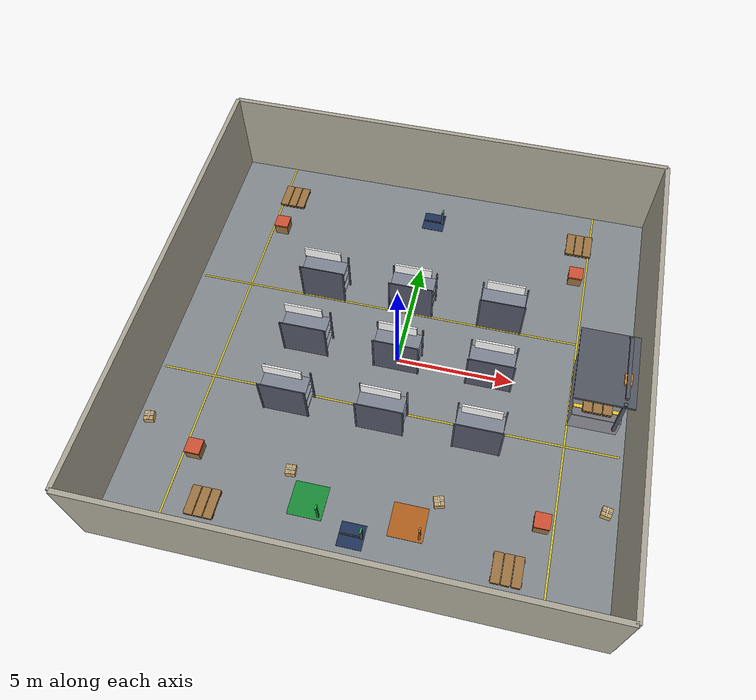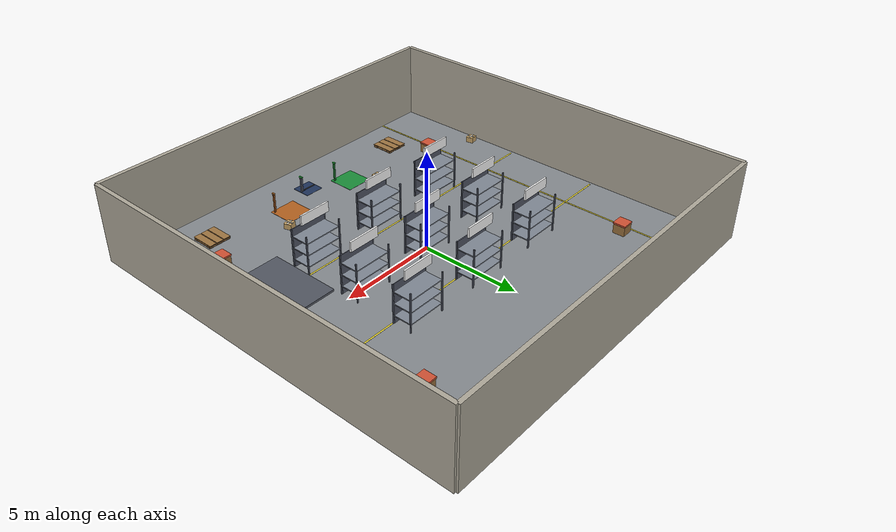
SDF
<?xml version="1.0" ?>
<sdf version="1.6">
  <world name="warehouse_world">

    <!-- ===== Physics (dartsim engine — must be a valid gz-physics engine) ===== -->
    <physics name="warehouse_physics" type="dartsim">
      <max_step_size>0.001</max_step_size>
      <real_time_factor>1.0</real_time_factor>
    </physics>

    <!-- ===== Required System Plugins ===== -->
    <plugin
      filename="gz-sim-physics-system"
      name="gz::sim::systems::Physics">
    </plugin>
    <plugin
      filename="gz-sim-user-commands-system"
      name="gz::sim::systems::UserCommands">
    </plugin>
    <plugin
      filename="gz-sim-scene-broadcaster-system"
      name="gz::sim::systems::SceneBroadcaster">
    </plugin>
    <plugin
      filename="gz-sim-contact-system"
      name="gz::sim::systems::Contact">
    </plugin>
    <plugin
      filename="gz-sim-sensors-system"
      name="gz::sim::systems::Sensors">
    </plugin>

    <!-- ===== Scene / ambient light ===== -->
    <scene>
      <ambient>0.42 0.42 0.46 1</ambient>
      <background>0.18 0.21 0.26 1</background>
      <shadows>true</shadows>
    </scene>

    <!-- ===== Lighting ===== -->
    <light type="directional" name="sun">
      <cast_shadows>true</cast_shadows>
      <pose>0 0 10 0 0 0</pose>
      <diffuse>0.85 0.85 0.82 1</diffuse>
      <specular>0.3 0.3 0.3 1</specular>
      <attenuation>
        <range>1000</range>
        <constant>0.9</constant>
        <linear>0.01</linear>
        <quadratic>0.001</quadratic>
      </attenuation>
      <direction>-0.5 0.15 -0.9</direction>
    </light>

    <!-- Fill light from the opposite side (kills harsh shadows) -->
    <light type="directional" name="fill_light">
      <cast_shadows>false</cast_shadows>
      <pose>0 0 8 0 0 0</pose>
      <diffuse>0.4 0.4 0.45 1</diffuse>
      <specular>0.1 0.1 0.1 1</specular>
      <direction>0.6 -0.2 -0.8</direction>
    </light>

    <!-- Overhead work light over the rack grid -->
    <light type="point" name="overhead_light">
      <cast_shadows>true</cast_shadows>
      <pose>0 0 10 0 0 0</pose>
      <diffuse>0.35 0.35 0.4 1</diffuse>
      <specular>0.15 0.15 0.15 1</specular>
      <attenuation>
        <range>60</range>
        <constant>0.3</constant>
        <linear>0.02</linear>
        <quadratic>0.002</quadratic>
      </attenuation>
    </light>

    <!-- ===== Ground ===== -->
    <model name="ground_plane">
      <static>true</static>
      <link name="link">
        <collision name="collision">
          <geometry>
            <plane>
              <normal>0 0 1</normal>
              <size>100 100</size>
            </plane>
          </geometry>
        </collision>
      </link>
    </model>

    <!-- ===== Warehouse Floor ===== -->
    <model name="warehouse_floor">
      <static>true</static>
      <pose>0 0 0 0 0 0</pose>
      <link name="link">
        <visual name="visual">
          <geometry><box><size>20 20 0.02</size></box></geometry>
          <material>
            <ambient>0.35 0.36 0.38 1</ambient>
            <diffuse>0.52 0.54 0.56 1</diffuse>
            <specular>0.12 0.12 0.12 1</specular>
          </material>
        </visual>
      </link>
    </model>

    <!-- Floor lane markings (visual guides for the aisles) -->
    <model name="floor_markings">
      <static>true</static>
      <link name="link">
        <visual name="stripe_a">
          <pose>0 2.5 0.012 0 0 0</pose>
          <geometry><box><size>19.5 0.08 0.004</size></box></geometry>
          <material>
            <ambient>0.6 0.55 0.1 1</ambient>
            <diffuse>0.85 0.78 0.18 1</diffuse>
          </material>
        </visual>
        <visual name="stripe_b">
          <pose>0 -2.5 0.012 0 0 0</pose>
          <geometry><box><size>19.5 0.08 0.004</size></box></geometry>
          <material>
            <ambient>0.6 0.55 0.1 1</ambient>
            <diffuse>0.85 0.78 0.18 1</diffuse>
          </material>
        </visual>
        <visual name="stripe_east">
          <pose>7.5 0 0.012 0 0 0</pose>
          <geometry><box><size>0.08 20 0.004</size></box></geometry>
          <material>
            <ambient>0.6 0.55 0.1 1</ambient>
            <diffuse>0.85 0.78 0.18 1</diffuse>
          </material>
        </visual>
        <visual name="stripe_west">
          <pose>-7.5 0 0.012 0 0 0</pose>
          <geometry><box><size>0.08 20 0.004</size></box></geometry>
          <material>
            <ambient>0.6 0.55 0.1 1</ambient>
            <diffuse>0.85 0.78 0.18 1</diffuse>
          </material>
        </visual>
        <visual name="stripe_dock">
          <pose>7.5 0 0.012 0 0 0</pose>
          <geometry><box><size>0.08 3.4 0.004</size></box></geometry>
          <material>
            <ambient>0.5 0.45 0.08 1</ambient>
            <diffuse>0.8 0.72 0.15 1</diffuse>
          </material>
        </visual>
      </link>
    </model>

    <!-- ===== Walls ===== -->
    <model name="north_wall">
      <static>true</static>
      <pose>0 10 2 0 0 0</pose>
      <link name="link">
        <collision name="collision">
          <geometry><box><size>20 0.2 4</size></box></geometry>
        </collision>
        <visual name="visual">
          <geometry><box><size>20 0.2 4</size></box></geometry>
          <material>
            <ambient>0.62 0.6 0.55 1</ambient>
            <diffuse>0.68 0.66 0.6 1</diffuse>
            <specular>0.05 0.05 0.05 1</specular>
          </material>
        </visual>
      </link>
    </model>

    <model name="south_wall">
      <static>true</static>
      <pose>0 -10 2 0 0 0</pose>
      <link name="link">
        <collision name="collision">
          <geometry><box><size>20 0.2 4</size></box></geometry>
        </collision>
        <visual name="visual">
          <geometry><box><size>20 0.2 4</size></box></geometry>
          <material>
            <ambient>0.62 0.6 0.55 1</ambient>
            <diffuse>0.68 0.66 0.6 1</diffuse>
            <specular>0.05 0.05 0.05 1</specular>
          </material>
        </visual>
      </link>
    </model>

    <model name="east_wall">
      <static>true</static>
      <pose>10 0 2 0 0 0</pose>
      <link name="link">
        <collision name="collision">
          <geometry><box><size>0.2 20 4</size></box></geometry>
        </collision>
        <visual name="visual">
          <geometry><box><size>0.2 20 4</size></box></geometry>
          <material>
            <ambient>0.62 0.6 0.55 1</ambient>
            <diffuse>0.68 0.66 0.6 1</diffuse>
            <specular>0.05 0.05 0.05 1</specular>
          </material>
        </visual>
      </link>
    </model>

    <model name="west_wall">
      <static>true</static>
      <pose>-10 0 2 0 0 0</pose>
      <link name="link">
        <collision name="collision">
          <geometry><box><size>0.2 20 4</size></box></geometry>
        </collision>
        <visual name="visual">
          <geometry><box><size>0.2 20 4</size></box></geometry>
          <material>
            <ambient>0.62 0.6 0.55 1</ambient>
            <diffuse>0.68 0.66 0.6 1</diffuse>
            <specular>0.05 0.05 0.05 1</specular>
          </material>
        </visual>
      </link>
    </model>

    <!-- ===== Racks (3 rows x 3 columns) with ID signs ===== -->
    <include><name>rack_a1</name><pose>-4 3 0 0 0 0</pose><uri>model://rack</uri></include>
    <include><name>rack_a2</name><pose> 0 3 0 0 0 0</pose><uri>model://rack</uri></include>
    <include><name>rack_a3</name><pose> 4 3 0 0 0 0</pose><uri>model://rack</uri></include>
    <include><name>rack_b1</name><pose>-4 0 0 0 0 0</pose><uri>model://rack</uri></include>
    <include><name>rack_b2</name><pose> 0 0 0 0 0 0</pose><uri>model://rack</uri></include>
    <include><name>rack_b3</name><pose> 4 0 0 0 0 0</pose><uri>model://rack</uri></include>
    <include><name>rack_c1</name><pose>-4 -3 0 0 0 0</pose><uri>model://rack</uri></include>
    <include><name>rack_c2</name><pose> 0 -3 0 0 0 0</pose><uri>model://rack</uri></include>
    <include><name>rack_c3</name><pose> 4 -3 0 0 0 0</pose><uri>model://rack</uri></include>

    <!-- Rack ID signs mounted above each rack -->
    <include><name>sign_a1</name><pose>-4 3 2.3 0 0 0</pose><uri>model://rack_sign_A1</uri></include>
    <include><name>sign_a2</name><pose> 0 3 2.3 0 0 0</pose><uri>model://rack_sign_A2</uri></include>
    <include><name>sign_a3</name><pose> 4 3 2.3 0 0 0</pose><uri>model://rack_sign_A3</uri></include>
    <include><name>sign_b1</name><pose>-4 0 2.3 0 0 0</pose><uri>model://rack_sign_B1</uri></include>
    <include><name>sign_b2</name><pose> 0 0 2.3 0 0 0</pose><uri>model://rack_sign_B2</uri></include>
    <include><name>sign_b3</name><pose> 4 0 2.3 0 0 0</pose><uri>model://rack_sign_B3</uri></include>
    <include><name>sign_c1</name><pose>-4 -3 2.3 0 0 0</pose><uri>model://rack_sign_C1</uri></include>
    <include><name>sign_c2</name><pose> 0 -3 2.3 0 0 0</pose><uri>model://rack_sign_C2</uri></include>
    <include><name>sign_c3</name><pose> 4 -3 2.3 0 0 0</pose><uri>model://rack_sign_C3</uri></include>

    <!-- ===== Loading dock (east wall) + pallets on the platform ===== -->
    <include><name>loading_dock</name><pose>8.5 0 0 0 0 0</pose><uri>model://loading_dock</uri></include>
    <include><name>dock_pallet_1</name><pose>8.5 -0.7 1.0 0 0 0</pose><uri>model://pallet</uri></include>
    <include><name>dock_pallet_2</name><pose>8.5 0.7 1.0 0 0 0</pose><uri>model://pallet</uri></include>
    <include><name>dock_crate</name><pose>8.5 0 1.0 0 0 0.4</pose><uri>model://crate</uri></include>

    <!-- ===== Pickup / dropoff stations (south zone) ===== -->
    <include><name>pickup_station</name><pose>-2 -7 0 0 0 0</pose><uri>model://pickup_station</uri></include>
    <include><name>dropoff_station</name><pose> 2 -7 0 0 0 0</pose><uri>model://dropoff_station</uri></include>

    <!-- ===== Charging stations (robot1 north, robot2 south) ===== -->
    <include><name>charging_north</name><pose>0 8 0 0 0 0</pose><uri>model://charging_station</uri></include>
    <include><name>charging_south</name><pose>0 -8 0 0 0 0</pose><uri>model://charging_station</uri></include>

    <!-- ===== Static pallets (off-lane) ===== -->
    <include><name>pallet_ne</name><pose> 7 8 0 0 0 0</pose><uri>model://pallet</uri></include>
    <include><name>pallet_nw</name><pose>-7 8 0 0 0 0</pose><uri>model://pallet</uri></include>
    <include><name>pallet_se</name><pose> 6 -8 0 0 0 0</pose><uri>model://pallet</uri></include>
    <include><name>pallet_sw</name><pose>-6 -8 0 0 0 0</pose><uri>model://pallet</uri></include>

    <!-- ===== Crates (off-lane) ===== -->
    <include><name>crate_ne</name><pose> 7 6 0 0 0 0</pose><uri>model://crate</uri></include>
    <include><name>crate_nw</name><pose>-7 6 0 0 0 0</pose><uri>model://crate</uri></include>
    <include><name>crate_se</name><pose> 7 -6 0 0 0 0</pose><uri>model://crate</uri></include>
    <include><name>crate_sw</name><pose>-7 -6 0 0 0 0</pose><uri>model://crate</uri></include>

    <!-- ===== Loose packages ===== -->
    <include><name>package_1</name><pose> 3 -6 0 0 0 0.3</pose><uri>model://package</uri></include>
    <include><name>package_2</name><pose>-3 -6 0 0 0 0.1</pose><uri>model://package</uri></include>
    <include><name>package_3</name><pose> 9.4 -5 0 0 0 -0.2</pose><uri>model://package</uri></include>
    <include><name>package_4</name><pose>-9.4 -5 0 0 0 0.2</pose><uri>model://package</uri></include>

  </world>
</sdf>

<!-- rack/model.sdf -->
<sdf version="1.6">
<model name="rack">
  <static>true</static>
  <link name="link">
    <collision name="footprint">
      <pose>0 0 1.0 0 0 0</pose>
      <geometry><box><size>1.96 0.96 2.0</size></box></geometry>
    </collision>
<visual name="post_nw">
<pose>-0.97 0.47 1.0 0 0 0</pose>
<geometry><box><size>0.06 0.06 2.0</size></box></geometry>
<material><ambient>0.15 0.16 0.2 1</ambient>
<diffuse>0.32 0.34 0.4 1</diffuse>
<specular>0.25 0.25 0.25 1</specular></material>
</visual>
<visual name="post_ne">
<pose> 0.97 0.47 1.0 0 0 0</pose>
<geometry><box><size>0.06 0.06 2.0</size></box></geometry>
<material><ambient>0.15 0.16 0.2 1</ambient>
<diffuse>0.32 0.34 0.4 1</diffuse>
<specular>0.25 0.25 0.25 1</specular></material>
</visual>
<visual name="post_sw">
<pose>-0.97 -0.47 1.0 0 0 0</pose>
<geometry><box><size>0.06 0.06 2.0</size></box></geometry>
<material><ambient>0.15 0.16 0.2 1</ambient>
<diffuse>0.32 0.34 0.4 1</diffuse>
<specular>0.25 0.25 0.25 1</specular></material>
</visual>
<visual name="post_se">
<pose> 0.97 -0.47 1.0 0 0 0</pose>
<geometry><box><size>0.06 0.06 2.0</size></box></geometry>
<material><ambient>0.15 0.16 0.2 1</ambient>
<diffuse>0.32 0.34 0.4 1</diffuse>
<specular>0.25 0.25 0.25 1</specular></material>
</visual>
<visual name="shelf1">
<pose>0 0 0.4 0 0 0</pose>
<geometry><box><size>1.9 0.94 0.05</size></box></geometry>
<material><ambient>0.25 0.27 0.3 1</ambient>
<diffuse>0.5 0.53 0.58 1</diffuse>
<specular>0.3 0.3 0.3 1</specular></material>
</visual>
<visual name="shelf2">
<pose>0 0 1.0 0 0 0</pose>
<geometry><box><size>1.9 0.94 0.05</size></box></geometry>
<material><ambient>0.25 0.27 0.3 1</ambient>
<diffuse>0.5 0.53 0.58 1</diffuse>
<specular>0.3 0.3 0.3 1</specular></material>
</visual>
<visual name="shelf3">
<pose>0 0 1.6 0 0 0</pose>
<geometry><box><size>1.9 0.94 0.05</size></box></geometry>
<material><ambient>0.25 0.27 0.3 1</ambient>
<diffuse>0.5 0.53 0.58 1</diffuse>
<specular>0.3 0.3 0.3 1</specular></material>
</visual>
<visual name="back_panel">
<pose>0 -0.46 1.0 0 0 0</pose>
<geometry><box><size>1.9 0.04 2.0</size></box></geometry>
<material><ambient>0.15 0.16 0.2 1</ambient>
<diffuse>0.32 0.34 0.4 1</diffuse>
<specular>0.25 0.25 0.25 1</specular></material>
</visual>
  </link>
</model>
</sdf>

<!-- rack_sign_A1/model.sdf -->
<sdf version="1.6">
<model name="rack_sign_A1">
  <static>true</static>
  <link name="link">
<visual name="panel">
<pose>0 0 0.25 0 0 0</pose>
<geometry><box><size>1.6 0.08 0.5</size></box></geometry>
<material><ambient>1 1 1 1</ambient>
<diffuse>1 1 1 1</diffuse>
<specular>0.1 0.1 0.1 1</specular>
<pbr><metal><albedo_map>textures/A1.png</albedo_map><roughness>0.55</roughness><metalness>0.1</metalness></metal></pbr></material>
</visual>
<visual name="pole">
<pose>0 -0.0 0.04 0 0 0</pose>
<geometry><box><size>0.06 0.06 0.08</size></box></geometry>
<material><ambient>0.1 0.1 0.12 1</ambient>
<diffuse>0.25 0.25 0.3 1</diffuse>
<specular>0.1 0.1 0.1 1</specular></material>
</visual>
  </link>
</model>
</sdf>

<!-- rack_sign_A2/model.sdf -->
<sdf version="1.6">
<model name="rack_sign_A2">
  <static>true</static>
  <link name="link">
<visual name="panel">
<pose>0 0 0.25 0 0 0</pose>
<geometry><box><size>1.6 0.08 0.5</size></box></geometry>
<material><ambient>1 1 1 1</ambient>
<diffuse>1 1 1 1</diffuse>
<specular>0.1 0.1 0.1 1</specular>
<pbr><metal><albedo_map>textures/A2.png</albedo_map><roughness>0.55</roughness><metalness>0.1</metalness></metal></pbr></material>
</visual>
<visual name="pole">
<pose>0 -0.0 0.04 0 0 0</pose>
<geometry><box><size>0.06 0.06 0.08</size></box></geometry>
<material><ambient>0.1 0.1 0.12 1</ambient>
<diffuse>0.25 0.25 0.3 1</diffuse>
<specular>0.1 0.1 0.1 1</specular></material>
</visual>
  </link>
</model>
</sdf>

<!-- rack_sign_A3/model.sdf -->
<sdf version="1.6">
<model name="rack_sign_A3">
  <static>true</static>
  <link name="link">
<visual name="panel">
<pose>0 0 0.25 0 0 0</pose>
<geometry><box><size>1.6 0.08 0.5</size></box></geometry>
<material><ambient>1 1 1 1</ambient>
<diffuse>1 1 1 1</diffuse>
<specular>0.1 0.1 0.1 1</specular>
<pbr><metal><albedo_map>textures/A3.png</albedo_map><roughness>0.55</roughness><metalness>0.1</metalness></metal></pbr></material>
</visual>
<visual name="pole">
<pose>0 -0.0 0.04 0 0 0</pose>
<geometry><box><size>0.06 0.06 0.08</size></box></geometry>
<material><ambient>0.1 0.1 0.12 1</ambient>
<diffuse>0.25 0.25 0.3 1</diffuse>
<specular>0.1 0.1 0.1 1</specular></material>
</visual>
  </link>
</model>
</sdf>

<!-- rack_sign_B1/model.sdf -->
<sdf version="1.6">
<model name="rack_sign_B1">
  <static>true</static>
  <link name="link">
<visual name="panel">
<pose>0 0 0.25 0 0 0</pose>
<geometry><box><size>1.6 0.08 0.5</size></box></geometry>
<material><ambient>1 1 1 1</ambient>
<diffuse>1 1 1 1</diffuse>
<specular>0.1 0.1 0.1 1</specular>
<pbr><metal><albedo_map>textures/B1.png</albedo_map><roughness>0.55</roughness><metalness>0.1</metalness></metal></pbr></material>
</visual>
<visual name="pole">
<pose>0 -0.0 0.04 0 0 0</pose>
<geometry><box><size>0.06 0.06 0.08</size></box></geometry>
<material><ambient>0.1 0.1 0.12 1</ambient>
<diffuse>0.25 0.25 0.3 1</diffuse>
<specular>0.1 0.1 0.1 1</specular></material>
</visual>
  </link>
</model>
</sdf>

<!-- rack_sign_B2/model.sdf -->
<sdf version="1.6">
<model name="rack_sign_B2">
  <static>true</static>
  <link name="link">
<visual name="panel">
<pose>0 0 0.25 0 0 0</pose>
<geometry><box><size>1.6 0.08 0.5</size></box></geometry>
<material><ambient>1 1 1 1</ambient>
<diffuse>1 1 1 1</diffuse>
<specular>0.1 0.1 0.1 1</specular>
<pbr><metal><albedo_map>textures/B2.png</albedo_map><roughness>0.55</roughness><metalness>0.1</metalness></metal></pbr></material>
</visual>
<visual name="pole">
<pose>0 -0.0 0.04 0 0 0</pose>
<geometry><box><size>0.06 0.06 0.08</size></box></geometry>
<material><ambient>0.1 0.1 0.12 1</ambient>
<diffuse>0.25 0.25 0.3 1</diffuse>
<specular>0.1 0.1 0.1 1</specular></material>
</visual>
  </link>
</model>
</sdf>

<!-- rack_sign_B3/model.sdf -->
<sdf version="1.6">
<model name="rack_sign_B3">
  <static>true</static>
  <link name="link">
<visual name="panel">
<pose>0 0 0.25 0 0 0</pose>
<geometry><box><size>1.6 0.08 0.5</size></box></geometry>
<material><ambient>1 1 1 1</ambient>
<diffuse>1 1 1 1</diffuse>
<specular>0.1 0.1 0.1 1</specular>
<pbr><metal><albedo_map>textures/B3.png</albedo_map><roughness>0.55</roughness><metalness>0.1</metalness></metal></pbr></material>
</visual>
<visual name="pole">
<pose>0 -0.0 0.04 0 0 0</pose>
<geometry><box><size>0.06 0.06 0.08</size></box></geometry>
<material><ambient>0.1 0.1 0.12 1</ambient>
<diffuse>0.25 0.25 0.3 1</diffuse>
<specular>0.1 0.1 0.1 1</specular></material>
</visual>
  </link>
</model>
</sdf>

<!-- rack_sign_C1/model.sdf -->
<sdf version="1.6">
<model name="rack_sign_C1">
  <static>true</static>
  <link name="link">
<visual name="panel">
<pose>0 0 0.25 0 0 0</pose>
<geometry><box><size>1.6 0.08 0.5</size></box></geometry>
<material><ambient>1 1 1 1</ambient>
<diffuse>1 1 1 1</diffuse>
<specular>0.1 0.1 0.1 1</specular>
<pbr><metal><albedo_map>textures/C1.png</albedo_map><roughness>0.55</roughness><metalness>0.1</metalness></metal></pbr></material>
</visual>
<visual name="pole">
<pose>0 -0.0 0.04 0 0 0</pose>
<geometry><box><size>0.06 0.06 0.08</size></box></geometry>
<material><ambient>0.1 0.1 0.12 1</ambient>
<diffuse>0.25 0.25 0.3 1</diffuse>
<specular>0.1 0.1 0.1 1</specular></material>
</visual>
  </link>
</model>
</sdf>

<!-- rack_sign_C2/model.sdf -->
<sdf version="1.6">
<model name="rack_sign_C2">
  <static>true</static>
  <link name="link">
<visual name="panel">
<pose>0 0 0.25 0 0 0</pose>
<geometry><box><size>1.6 0.08 0.5</size></box></geometry>
<material><ambient>1 1 1 1</ambient>
<diffuse>1 1 1 1</diffuse>
<specular>0.1 0.1 0.1 1</specular>
<pbr><metal><albedo_map>textures/C2.png</albedo_map><roughness>0.55</roughness><metalness>0.1</metalness></metal></pbr></material>
</visual>
<visual name="pole">
<pose>0 -0.0 0.04 0 0 0</pose>
<geometry><box><size>0.06 0.06 0.08</size></box></geometry>
<material><ambient>0.1 0.1 0.12 1</ambient>
<diffuse>0.25 0.25 0.3 1</diffuse>
<specular>0.1 0.1 0.1 1</specular></material>
</visual>
  </link>
</model>
</sdf>

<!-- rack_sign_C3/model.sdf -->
<sdf version="1.6">
<model name="rack_sign_C3">
  <static>true</static>
  <link name="link">
<visual name="panel">
<pose>0 0 0.25 0 0 0</pose>
<geometry><box><size>1.6 0.08 0.5</size></box></geometry>
<material><ambient>1 1 1 1</ambient>
<diffuse>1 1 1 1</diffuse>
<specular>0.1 0.1 0.1 1</specular>
<pbr><metal><albedo_map>textures/C3.png</albedo_map><roughness>0.55</roughness><metalness>0.1</metalness></metal></pbr></material>
</visual>
<visual name="pole">
<pose>0 -0.0 0.04 0 0 0</pose>
<geometry><box><size>0.06 0.06 0.08</size></box></geometry>
<material><ambient>0.1 0.1 0.12 1</ambient>
<diffuse>0.25 0.25 0.3 1</diffuse>
<specular>0.1 0.1 0.1 1</specular></material>
</visual>
  </link>
</model>
</sdf>

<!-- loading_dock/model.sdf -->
<sdf version="1.6">
<model name="loading_dock">
  <static>true</static>
  <link name="link">
    <collision name="platform">
      <pose>0 0 0.5 0 0 0</pose>
      <geometry><box><size>2.0 3.0 1.0</size></box></geometry>
    </collision>
<visual name="platform_vis">
<pose>0 0 0.5 0 0 0</pose>
<geometry><box><size>2.0 3.0 1.0</size></box></geometry>
<material><ambient>0.42 0.42 0.45 1</ambient>
<diffuse>0.58 0.58 0.62 1</diffuse>
<specular>0.2 0.2 0.2 1</specular></material>
</visual>
<visual name="platform_top">
<pose>0 0 1.0 0 0 0</pose>
<geometry><box><size>1.96 2.96 0.01</size></box></geometry>
<material><ambient>0.3 0.3 0.32 1</ambient>
<diffuse>0.45 0.45 0.48 1</diffuse>
<specular>0.1 0.1 0.1 1</specular></material>
</visual>
<visual name="stripe1">
<pose>0 -1.05 1.02 0 0 0</pose>
<geometry><box><size>1.9 0.16 0.02</size></box></geometry>
<material><ambient>0.8 0.65 0.1 1</ambient>
<diffuse>0.95 0.8 0.15 1</diffuse>
<specular>0.3 0.25 0.1 1</specular></material>
</visual>
<visual name="stripe2">
<pose>0 1.05 1.02 0 0 0</pose>
<geometry><box><size>1.9 0.16 0.02</size></box></geometry>
<material><ambient>0.8 0.65 0.1 1</ambient>
<diffuse>0.95 0.8 0.15 1</diffuse>
<specular>0.3 0.25 0.1 1</specular></material>
</visual>
<visual name="canopy">
<pose>0 0 2.6 0 0 0</pose>
<geometry><box><size>2.4 3.3 0.1</size></box></geometry>
<material><ambient>0.15 0.16 0.18 1</ambient>
<diffuse>0.32 0.34 0.38 1</diffuse>
<specular>0.2 0.2 0.2 1</specular></material>
</visual>
<visual name="doorpost_left">
<pose>0.8 -1.55 1.6 0 0 0</pose>
<geometry><box><size>0.14 0.14 2.2</size></box></geometry>
<material><ambient>0.15 0.16 0.18 1</ambient>
<diffuse>0.32 0.34 0.38 1</diffuse>
<specular>0.2 0.2 0.2 1</specular></material>
</visual>
<visual name="doorpost_right">
<pose>0.8 1.55 1.6 0 0 0</pose>
<geometry><box><size>0.14 0.14 2.2</size></box></geometry>
<material><ambient>0.15 0.16 0.18 1</ambient>
<diffuse>0.32 0.34 0.38 1</diffuse>
<specular>0.2 0.2 0.2 1</specular></material>
</visual>
<visual name="door_header">
<pose>0.8 0 2.85 0 0 0</pose>
<geometry><box><size>0.14 2.8 0.14</size></box></geometry>
<material><ambient>0.15 0.16 0.18 1</ambient>
<diffuse>0.32 0.34 0.38 1</diffuse>
<specular>0.2 0.2 0.2 1</specular></material>
</visual>
<visual name="dock_light">
<pose>0.8 -0.5 2.78 0 0 0</pose>
<geometry><box><size>0.3 0.5 0.1</size></box></geometry>
<material><ambient>0.5 0.3 0.08 1</ambient>
<diffuse>0.8 0.5 0.15 1</diffuse>
<specular>0.1 0.1 0.1 1</specular>
<emissive>0.95 0.6 0.2 1</emissive></material>
</visual>
  </link>
</model>
</sdf>

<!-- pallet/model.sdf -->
<sdf version="1.6">
<model name="pallet">
  <static>true</static>
  <link name="link">
    <collision name="footprint">
      <pose>0 0 0.07 0 0 0</pose>
      <geometry><box><size>1.2 1.2 0.14</size></box></geometry>
    </collision>
<visual name="top1">
<pose>-0.4 0 0.13 0 0 0</pose>
<geometry><box><size>0.36 1.2 0.03</size></box></geometry>
<material><ambient>0.35 0.26 0.15 1</ambient>
<diffuse>0.62 0.46 0.26 1</diffuse>
<specular>0.15 0.1 0.05 1</specular></material>
</visual>
<visual name="top2">
<pose>0.0 0 0.13 0 0 0</pose>
<geometry><box><size>0.36 1.2 0.03</size></box></geometry>
<material><ambient>0.35 0.26 0.15 1</ambient>
<diffuse>0.62 0.46 0.26 1</diffuse>
<specular>0.15 0.1 0.05 1</specular></material>
</visual>
<visual name="top3">
<pose>0.4 0 0.13 0 0 0</pose>
<geometry><box><size>0.36 1.2 0.03</size></box></geometry>
<material><ambient>0.35 0.26 0.15 1</ambient>
<diffuse>0.62 0.46 0.26 1</diffuse>
<specular>0.15 0.1 0.05 1</specular></material>
</visual>
<visual name="stringer1">
<pose>0 -0.45 0.06 0 0 0</pose>
<geometry><box><size>1.2 0.18 0.1</size></box></geometry>
<material><ambient>0.28 0.2 0.11 1</ambient>
<diffuse>0.5 0.36 0.2 1</diffuse>
<specular>0.1 0.08 0.04 1</specular></material>
</visual>
<visual name="stringer2">
<pose>0 0.45 0.06 0 0 0</pose>
<geometry><box><size>1.2 0.18 0.1</size></box></geometry>
<material><ambient>0.28 0.2 0.11 1</ambient>
<diffuse>0.5 0.36 0.2 1</diffuse>
<specular>0.1 0.08 0.04 1</specular></material>
</visual>
<visual name="bottom1">
<pose>-0.4 0 0.02 0 0 0</pose>
<geometry><box><size>0.36 1.2 0.03</size></box></geometry>
<material><ambient>0.28 0.2 0.11 1</ambient>
<diffuse>0.5 0.36 0.2 1</diffuse>
<specular>0.1 0.08 0.04 1</specular></material>
</visual>
<visual name="bottom2">
<pose>0.0 0 0.02 0 0 0</pose>
<geometry><box><size>0.36 1.2 0.03</size></box></geometry>
<material><ambient>0.28 0.2 0.11 1</ambient>
<diffuse>0.5 0.36 0.2 1</diffuse>
<specular>0.1 0.08 0.04 1</specular></material>
</visual>
<visual name="bottom3">
<pose>0.4 0 0.02 0 0 0</pose>
<geometry><box><size>0.36 1.2 0.03</size></box></geometry>
<material><ambient>0.28 0.2 0.11 1</ambient>
<diffuse>0.5 0.36 0.2 1</diffuse>
<specular>0.1 0.08 0.04 1</specular></material>
</visual>
  </link>
</model>
</sdf>

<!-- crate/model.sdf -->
<sdf version="1.6">
<model name="crate">
  <static>true</static>
  <link name="link">
    <collision name="footprint">
      <pose>0 0 0.25 0 0 0</pose>
      <geometry><box><size>0.6 0.6 0.5</size></box></geometry>
    </collision>
<visual name="body">
<pose>0 0 0.25 0 0 0</pose>
<geometry><box><size>0.6 0.6 0.5</size></box></geometry>
<material><ambient>0.33 0.24 0.13 1</ambient>
<diffuse>0.6 0.44 0.24 1</diffuse>
<specular>0.15 0.1 0.05 1</specular></material>
</visual>
<visual name="lid">
<pose>0 0 0.54 0 0 0</pose>
<geometry><box><size>0.64 0.64 0.08</size></box></geometry>
<material><ambient>0.68 0.25 0.16 1</ambient>
<diffuse>0.82 0.32 0.2 1</diffuse>
<specular>0.3 0.2 0.1 1</specular></material>
</visual>
  </link>
</model>
</sdf>

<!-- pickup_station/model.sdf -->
<sdf version="1.6">
<model name="pickup_station">
  <static>true</static>
  <link name="link">
<visual name="marker">
<pose>0 0 0.01 0 0 0</pose>
<geometry><box><size>1.4 1.4 0.02</size></box></geometry>
<material><ambient>0.05 0.25 0.1 1</ambient>
<diffuse>0.1 0.55 0.22 1</diffuse>
<specular>0.1 0.1 0.1 1</specular></material>
</visual>
<visual name="pole">
<pose>0.55 -0.55 0.5 0 0 0</pose>
<geometry><box><size>0.08 0.08 1.0</size></box></geometry>
<material><ambient>0.05 0.2 0.08 1</ambient>
<diffuse>0.12 0.5 0.2 1</diffuse>
<specular>0.1 0.1 0.1 1</specular></material>
</visual>
<visual name="light">
<pose>0.55 -0.55 1.05 0 0 0</pose>
<geometry><box><size>0.06 0.18 0.06</size></box></geometry>
<material><ambient>0.1 0.5 0.2 1</ambient>
<diffuse>0.2 0.8 0.3 1</diffuse>
<specular>0.1 0.1 0.1 1</specular>
<emissive>0.1 0.8 0.3 1</emissive></material>
</visual>
  </link>
</model>
</sdf>

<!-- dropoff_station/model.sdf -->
<sdf version="1.6">
<model name="dropoff_station">
  <static>true</static>
  <link name="link">
<visual name="marker">
<pose>0 0 0.01 0 0 0</pose>
<geometry><box><size>1.4 1.4 0.02</size></box></geometry>
<material><ambient>0.3 0.16 0.05 1</ambient>
<diffuse>0.7 0.38 0.12 1</diffuse>
<specular>0.1 0.1 0.1 1</specular></material>
</visual>
<visual name="pole">
<pose>0.55 -0.55 0.5 0 0 0</pose>
<geometry><box><size>0.08 0.08 1.0</size></box></geometry>
<material><ambient>0.26 0.14 0.04 1</ambient>
<diffuse>0.6 0.32 0.1 1</diffuse>
<specular>0.1 0.1 0.1 1</specular></material>
</visual>
<visual name="light">
<pose>0.55 -0.55 1.05 0 0 0</pose>
<geometry><box><size>0.06 0.18 0.06</size></box></geometry>
<material><ambient>0.5 0.3 0.1 1</ambient>
<diffuse>0.8 0.5 0.2 1</diffuse>
<specular>0.1 0.1 0.1 1</specular>
<emissive>0.9 0.55 0.15 1</emissive></material>
</visual>
  </link>
</model>
</sdf>

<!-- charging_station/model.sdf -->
<sdf version="1.6">
<model name="charging_station">
  <static>true</static>
  <link name="link">
    <collision name="pole">
      <pose>0.4 0 0.4 0 0 0</pose>
      <geometry><box><size>0.1 0.1 0.8</size></box></geometry>
    </collision>
<visual name="pad">
<pose>0 0 0.01 0 0 0</pose>
<geometry><box><size>1.0 1.0 0.02</size></box></geometry>
<material><ambient>0.08 0.12 0.2 1</ambient>
<diffuse>0.12 0.2 0.35 1</diffuse>
<specular>0.3 0.3 0.3 1</specular></material>
</visual>
<visual name="pole_vis">
<pose>0.4 0 0.4 0 0 0</pose>
<geometry><box><size>0.1 0.1 0.8</size></box></geometry>
<material><ambient>0.12 0.13 0.16 1</ambient>
<diffuse>0.3 0.32 0.38 1</diffuse>
<specular>0.2 0.2 0.2 1</specular></material>
</visual>
<visual name="led">
<pose>0.4 0 0.85 0 0 0</pose>
<geometry><box><size>0.06 0.22 0.06</size></box></geometry>
<material><ambient>0.1 0.4 0.15 1</ambient>
<diffuse>0.2 0.8 0.3 1</diffuse>
<specular>0.1 0.1 0.1 1</specular>
<emissive>0.15 0.9 0.35 1</emissive></material>
</visual>
<visual name="cable">
<pose>0 0 0.05 0 0 0</pose>
<geometry><box><size>0.9 0.06 0.02</size></box></geometry>
<material><ambient>0.1 0.1 0.1 1</ambient>
<diffuse>0.2 0.2 0.2 1</diffuse>
<specular>0.1 0.1 0.1 1</specular></material>
</visual>
  </link>
</model>
</sdf>

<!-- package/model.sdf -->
<sdf version="1.6">
<model name="package">
  <static>true</static>
  <link name="link">
    <collision name="footprint">
      <pose>0 0 0.15 0 0 0</pose>
      <geometry><box><size>0.4 0.4 0.3</size></box></geometry>
    </collision>
<visual name="body">
<pose>0 0 0.15 0 0 0</pose>
<geometry><box><size>0.4 0.4 0.3</size></box></geometry>
<material><ambient>0.62 0.5 0.3 1</ambient>
<diffuse>0.78 0.64 0.4 1</diffuse>
<specular>0.15 0.12 0.06 1</specular></material>
</visual>
<visual name="tape_x">
<pose>0 0 0.31 0 0 0</pose>
<geometry><box><size>0.4 0.06 0.02</size></box></geometry>
<material><ambient>0.85 0.83 0.78 1</ambient>
<diffuse>0.92 0.9 0.85 1</diffuse>
<specular>0.2 0.2 0.2 1</specular></material>
</visual>
<visual name="tape_y">
<pose>0 0 0.31 0 0 0</pose>
<geometry><box><size>0.06 0.4 0.02</size></box></geometry>
<material><ambient>0.85 0.83 0.78 1</ambient>
<diffuse>0.92 0.9 0.85 1</diffuse>
<specular>0.2 0.2 0.2 1</specular></material>
</visual>
  </link>
</model>
</sdf>
